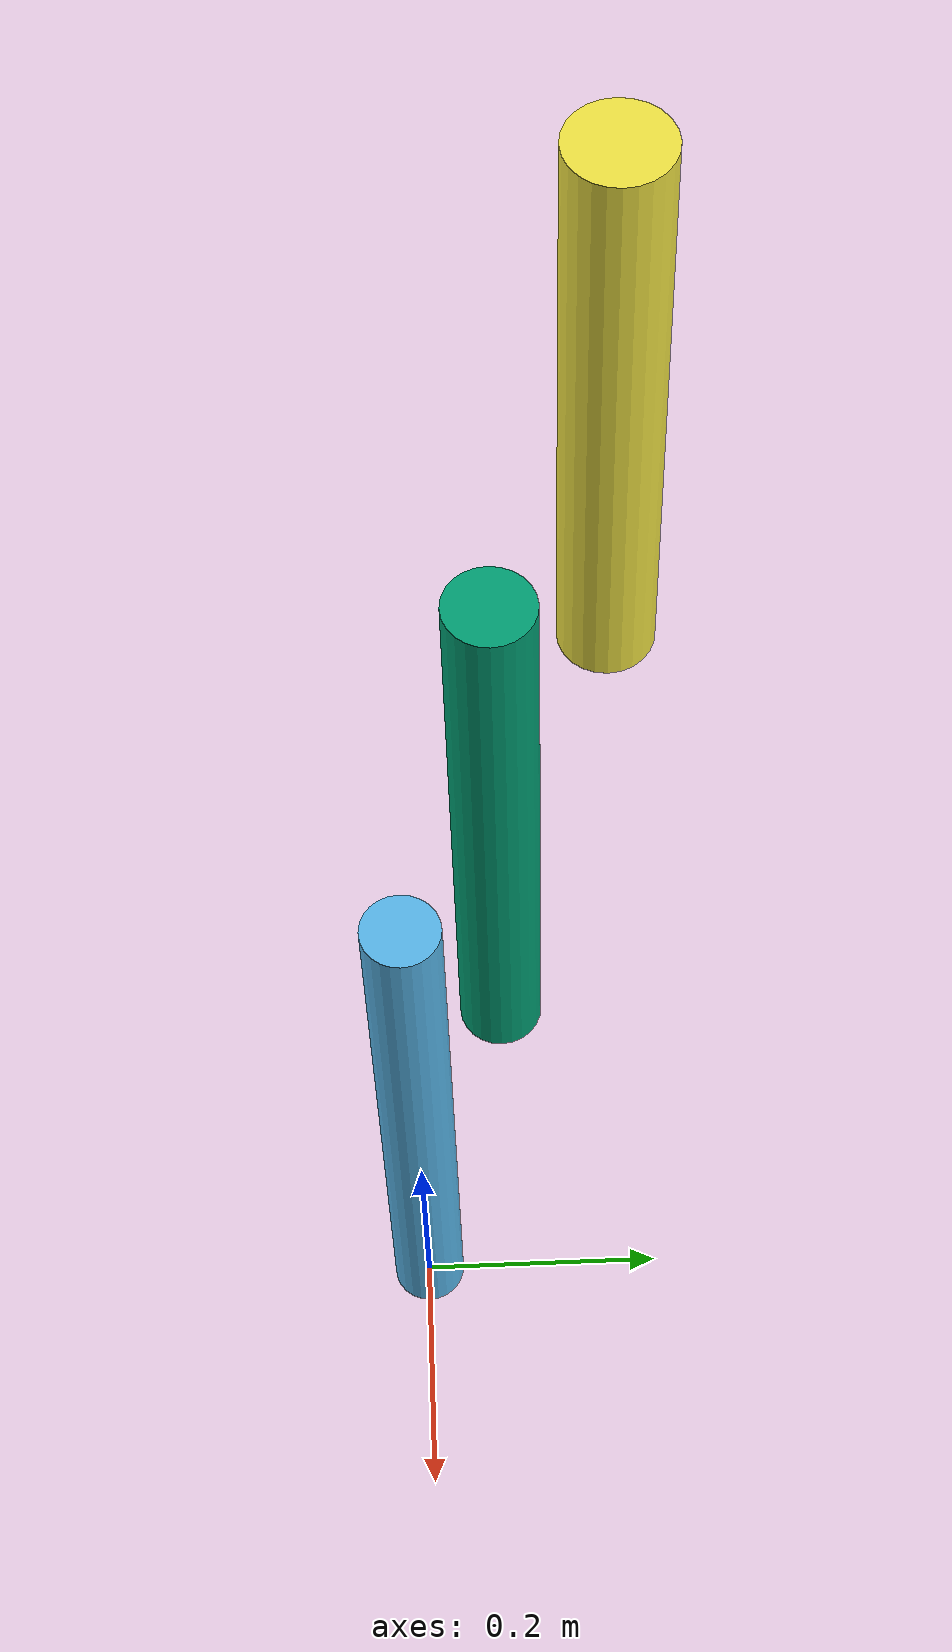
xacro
<?xml version="1.0" ?>
<!-- Differential drive robot -->

<robot name="robotic_arm" xmlns:xacro="http://www.ros.org/wiki/xacro">
 <xacro:include filename="$(find arm)/urdf/arm.gazebo" />
<xacro:include filename="$(find arm)/urdf/macros.xacro" />

<!-- Base of a robot -->

<link name="world"/>
<xacro:base_cylinder name="arm1" l_rpy="0 0 0" l_xyz="0 0 0.3" mass="0.8" r="0.03" l="0.6"  />

<!-- fixing top on base of robot -->
<xacro:custom_joint name="base_joint" joint_type="fixed" j_axis="0 0 0" j_parent="world" j_child="arm1" j_rpy="0 0 0" j_xyz="0 0 0" />

<xacro:base_cylinder name="arm2" l_rpy="0 0 0" l_xyz="0 0 0.18" mass="0.4" r="0.03" l="0.5"  />

<xacro:custom_joint name="joint1" joint_type="continuous" j_axis="0 1 0" j_parent="arm1" j_child="arm2" j_rpy="0 0 0" j_xyz="0 0.07 0.55" />

<xacro:base_cylinder name="arm3" l_rpy="0 0 0" l_xyz="0 0 0.15" mass="0.4" r="0.03" l="0.4"  />

<xacro:custom_joint name="joint2" joint_type="continuous" j_axis="0 1 0" j_parent="arm2" j_child="arm3" j_rpy="0 0 0" j_xyz="0 0.07 0.45" />

 <transmission name="tran1">
    <type>transmission_interface/SimpleTransmission</type>
    <joint name="joint1">
      <hardwareInterface>hardware_interface/PositionJointInterface</hardwareInterface>
    </joint>
    <actuator name="motor1">
      <hardwareInterface>hardware_interface/PositionJointInterface</hardwareInterface>
      <mechanicalReduction>1</mechanicalReduction>
    </actuator>
  </transmission>

  <transmission name="tran2">
    <type>transmission_interface/SimpleTransmission</type>
    <joint name="joint2">
      <hardwareInterface>hardware_interface/PositionJointInterface</hardwareInterface>
    </joint>
    <actuator name="motor2">
      <hardwareInterface>hardware_interface/PositionJointInterface</hardwareInterface>
      <mechanicalReduction>1</mechanicalReduction>
    </actuator>
  </transmission>

</robot>

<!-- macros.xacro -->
<robot xmlns:xacro="http://www.ros.org/wiki/xacro">

<!-- cylinder shape link -->
  <xacro:macro name="base_cylinder" params="name l_rpy l_xyz mass r l">
    <link name="${name}">
       <origin rpy="${l_rpy}" xyz="${l_xyz}"/>
      <inertial>
        <mass value="${mass}"/>
        <inertia  ixx="${mass*(3*r*r+l*l)/12}" ixy = "0" ixz = "0"
                  iyy="${mass*(3*r*r+l*l)/12}" iyz = "0"
                  izz="${mass*(r*r)/2}" />
      </inertial>

      <collision >
        <origin rpy="${l_rpy}" xyz="${l_xyz}"/>
        <geometry>
          <cylinder length="${l}" radius="${r}"/>
        </geometry>
      </collision>

      <visual >
       <origin rpy="${l_rpy}" xyz="${l_xyz}"/>
        <geometry>
          <cylinder length="${l}" radius="${r}"/>
        </geometry>
      </visual>

    </link>
  </xacro:macro>

  <!-- sphere shape link -->
  <xacro:macro name="custom_sphere" params="name s_rpy s_xyz s_mass s_r ">
    <link name="${name}">
      <origin rpy="${s_rpy}" xyz="{s_xyz}"/>
      <inertial>
        <mass value="${s_mass}"/>
        <inertia  ixx="${s_mass*2/5*s_r*s_r}" ixy = "0" ixz = "0"
                  iyy="${s_mass*2/5*s_r*s_r}" iyz = "0"
                  izz="${s_mass*2/5*s_r*s_r}"/>
      </inertial>

      <collision >
        <geometry>
          <sphere radius="${s_r}"/>
        </geometry>
      </collision>

      <visual >
        <geometry>
          <sphere radius="${s_r}"/>
        </geometry>
      </visual>

    </link>
  </xacro:macro>

  <!--  cube shape link  -->
  <xacro:macro name="custom_box" params="name b_rpy b_xyz b_mass b_x b_y b_z ">
    <link name="${name}">
      <origin rpy="${b_rpy}" xyz="{b_xyz}"/>
      <inertial>
        <mass value="${b_mass}"/>
        <inertia  ixx="${b_mass*(b_y+b_z)/12}" ixy = "0" ixz = "0"
                  iyy="${b_mass*(b_x*b_z)/12}" iyz = "0"
                  izz="${b_mass*(b_x*b_y)/12}"/>
      </inertial>

      <collision >

        <geometry>
         <box size="${b_x} ${b_y} ${b_z}" />
        </geometry>
      </collision>

      <visual >

        <geometry>
         <box size="${b_x} ${b_y} ${b_z}" />
        </geometry>
      </visual>

    </link>
  </xacro:macro>

<!-- For all types of joint -->
  <xacro:macro name="custom_joint" params="name joint_type j_axis j_parent j_child j_rpy j_xyz ">
    <joint name="${name}" type="${joint_type}">
      <axis xyz="${j_axis}" />
      <origin rpy="${j_rpy}" xyz="${j_xyz}"/>
      <parent link="${j_parent}"/>
      <child link="${j_child}"/>
      <limit effort="1000" lower="0" upper="6.28" velocity="100" />
      <axis rpy="${j_rpy}" xyz="${j_xyz}"/>
      <joint_properties damping="1.0" friction="1.0"/>
    </joint>
  </xacro:macro>

</robot>
